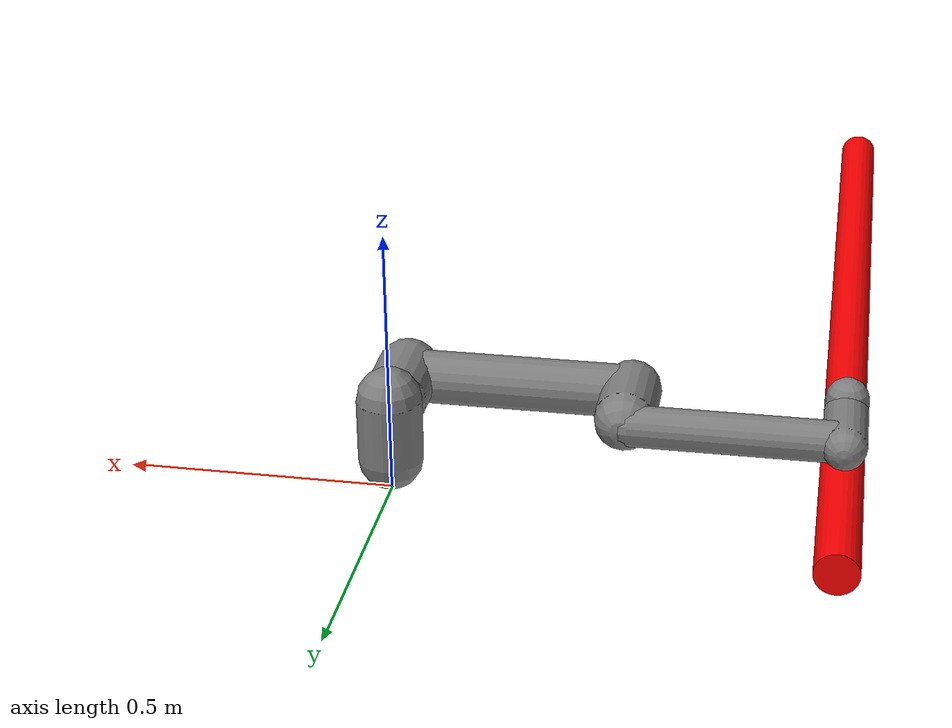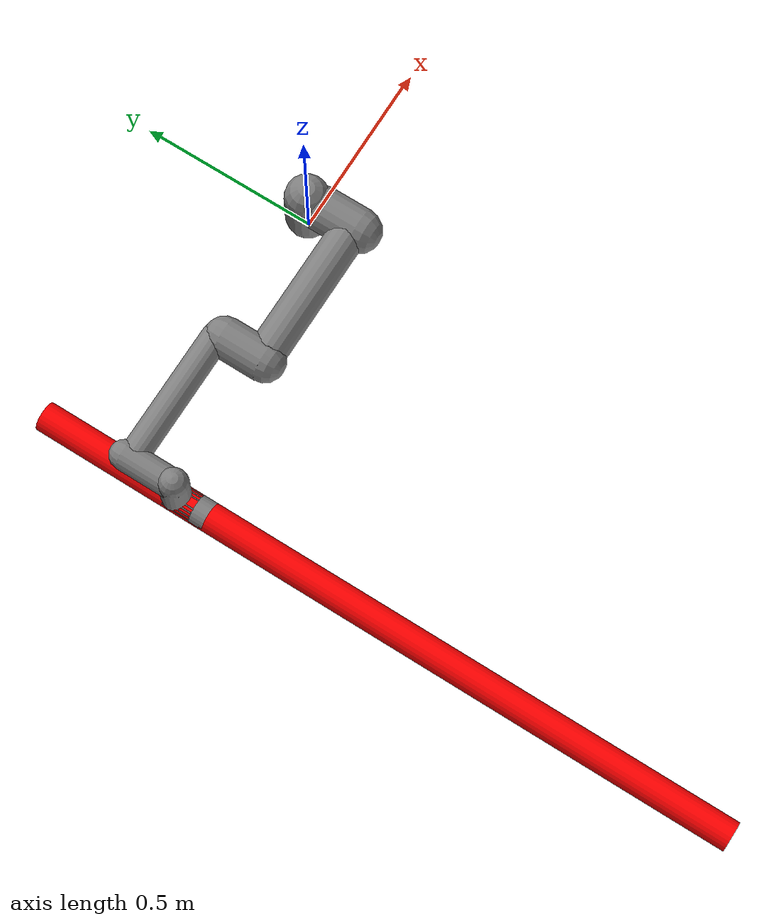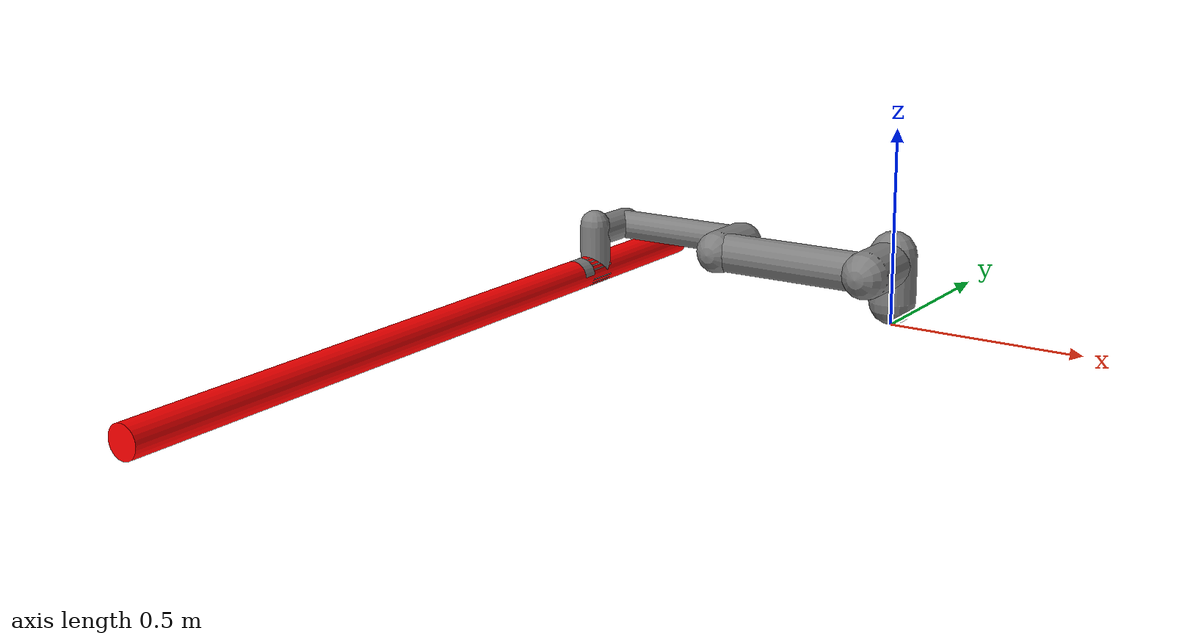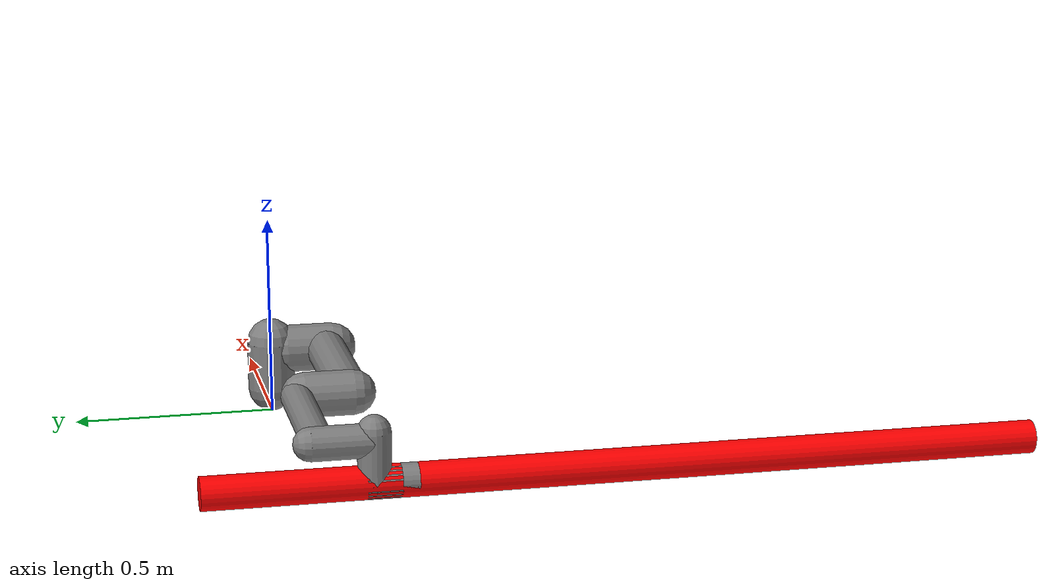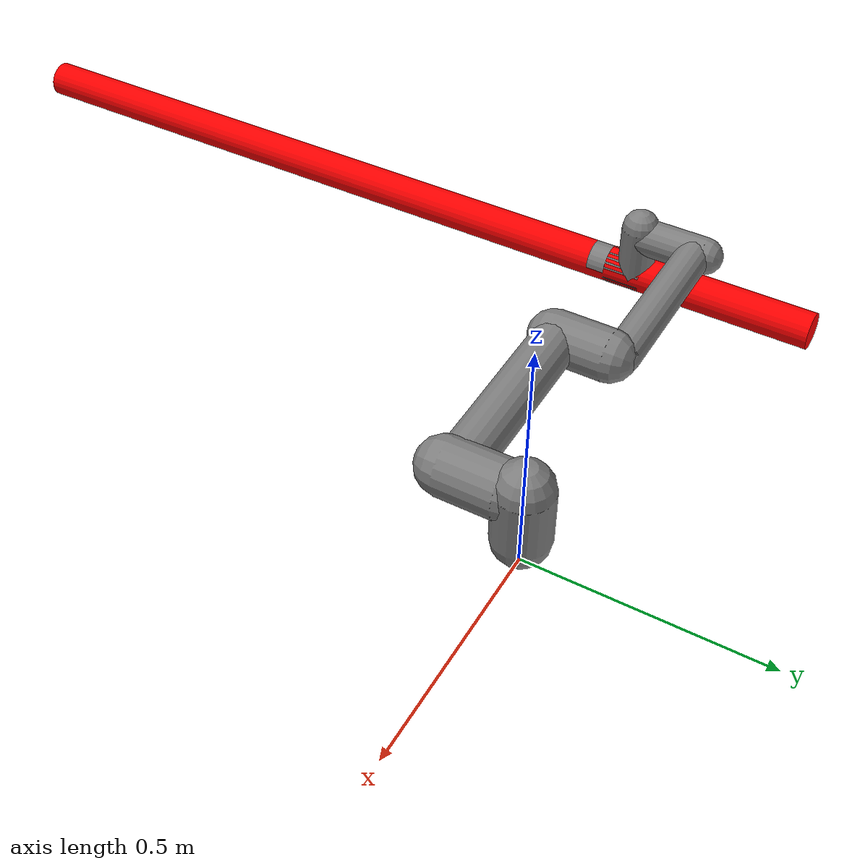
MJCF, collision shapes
<mujoco model="ur5e">
  <compiler angle="radian" autolimits="true" meshdir=".."/>

  <option integrator="implicitfast"/>

  <default>
    <default class="ur5e">
      <material specular="0.5" shininess="0.25"/>
      <joint axis="0 1 0" range="-6.28319 6.28319" armature="0.1"/>
      <general gaintype="fixed" biastype="affine" ctrlrange="-6.2831 6.2831" gainprm="2000" biasprm="0 -2000 -400"
        forcerange="-150 150"/>
      <default class="size3">
        <default class="size3_limited">
          <joint range="-3.1415 3.1415"/>
          <general ctrlrange="-3.1415 3.1415"/>
        </default>
      </default>
      <default class="size1">
        <general gainprm="500" biasprm="0 -500 -100" forcerange="-28 28"/>
      </default>
      <default class="visual">
        <geom type="mesh" contype="0" conaffinity="0" group="2"/>
      </default>
      <default class="collision">
        <geom type="capsule" group="3"/>
        <default class="eef_collision">
          <geom type="cylinder"/>
        </default>
      </default>
      <site size="0.001" rgba="0.5 0.5 0.5 0.3" group="4"/>
    </default>
  </default>

  <asset>
    <mesh name="base_0" file="ur5_assets/base_0.obj"/>
    <mesh name="base_1" file="ur5_assets/base_1.obj"/>
    <mesh name="shoulder_0" file="ur5_assets/shoulder_0.obj"/>
    <mesh name="shoulder_1" file="ur5_assets/shoulder_1.obj"/>
    <mesh name="shoulder_2" file="ur5_assets/shoulder_2.obj"/>
    <mesh name="upperarm_0" file="ur5_assets/upperarm_0.obj"/>
    <mesh name="upperarm_1" file="ur5_assets/upperarm_1.obj"/>
    <mesh name="upperarm_2" file="ur5_assets/upperarm_2.obj"/>
    <mesh name="upperarm_3" file="ur5_assets/upperarm_3.obj"/>
    <mesh name="forearm_0" file="ur5_assets/forearm_0.obj"/>
    <mesh name="forearm_1" file="ur5_assets/forearm_1.obj"/>
    <mesh name="forearm_2" file="ur5_assets/forearm_2.obj"/>
    <mesh name="forearm_3" file="ur5_assets/forearm_3.obj"/>
    <mesh name="wrist1_0" file="ur5_assets/wrist1_0.obj"/>
    <mesh name="wrist1_1" file="ur5_assets/wrist1_1.obj"/>
    <mesh name="wrist1_2" file="ur5_assets/wrist1_2.obj"/>
    <mesh name="wrist2_0" file="ur5_assets/wrist2_0.obj"/>
    <mesh name="wrist2_1" file="ur5_assets/wrist2_1.obj"/>
    <mesh name="wrist2_2" file="ur5_assets/wrist2_2.obj"/>
    <mesh name="wrist3" file="ur5_assets/wrist3.obj"/>
  </asset>

  <worldbody>
    <light name="spotlight" mode="targetbodycom" target="wrist_2_link" pos="0 -1 2"/>
    <body name="base" quat="0 0 0 -1" childclass="ur5e">
      <inertial mass="4.0" pos="0 0 0" diaginertia="0.00443333156 0.00443333156 0.0072"/>
      <geom mesh="base_0"   class="visual"/>
      <geom mesh="base_1"   class="visual"/>
      <body name="shoulder_link" pos="0 0 0.163">
        <inertial mass="3.7" pos="0 0 0" diaginertia="0.0102675 0.0102675 0.00666"/>
        <joint name="shoulder_pan_joint" class="size3" axis="0 0 1"/>
        <geom mesh="shoulder_0"   class="visual"/>
        <geom mesh="shoulder_1"   class="visual"/>
        <geom mesh="shoulder_2"   class="visual"/>
        <geom class="collision" size="0.06 0.06" pos="0 0 -0.04"/>
        <body name="upper_arm_link" pos="0 0.138 0" quat="1 0 1 0">
          <inertial mass="8.393" pos="0 0 0.2125" diaginertia="0.133886 0.133886 0.0151074"/>
          <joint name="shoulder_lift_joint" class="size3"/>
          <geom mesh="upperarm_0"  class="visual"/>
          <geom mesh="upperarm_1"   class="visual"/>
          <geom mesh="upperarm_2"   class="visual"/>
          <geom mesh="upperarm_3"   class="visual"/>
          <geom class="collision" pos="0 -0.04 0" quat="1 1 0 0" size="0.06 0.06"/>
          <geom class="collision" size="0.05 0.2" pos="0 0 0.2"/>
          <body name="forearm_link" pos="0 -0.131 0.425">
            <inertial mass="2.275" pos="0 0 0.196" diaginertia="0.0311796 0.0311796 0.004095"/>
            <joint name="elbow_joint" class="size3_limited"/>
            <geom mesh="forearm_0"   class="visual"/>
            <geom mesh="forearm_1"  class="visual"/>
            <geom mesh="forearm_2"   class="visual"/>
            <geom mesh="forearm_3"   class="visual"/>
            <geom class="collision" pos="0 0.08 0" quat="1 1 0 0" size="0.055 0.06"/>
            <geom class="collision" size="0.038 0.19" pos="0 0 0.2"/>
            <body name="wrist_1_link" pos="0 0 0.392" quat="1 0 1 0">
              <inertial mass="1.219" pos="0 0.127 0" diaginertia="0.0025599 0.0025599 0.0021942"/>
              <joint name="wrist_1_joint" class="size1"/>
              <geom mesh="wrist1_0"   class="visual"/>
              <geom mesh="wrist1_1"   class="visual"/>
              <geom mesh="wrist1_2"   class="visual"/>
              <geom class="collision" pos="0 0.05 0" quat="1 1 0 0" size="0.04 0.07"/>
              <body name="wrist_2_link" pos="0 0.127 0">
                <inertial mass="1.219" pos="0 0 0.1" diaginertia="0.0025599 0.0025599 0.0021942"/>
                <joint name="wrist_2_joint" axis="0 0 1" class="size1"/>
                <geom mesh="wrist2_0"   class="visual"/>
                <geom mesh="wrist2_1"   class="visual"/>
                <geom mesh="wrist2_2"   class="visual"/>
                <geom class="collision" size="0.04 0.06" pos="0 0 0.04"/>
                <geom class="collision" pos="0 0.02 0.1" quat="1 1 0 0" size="0.04 0.04"/>
                <body name="wrist_3_link" pos="0 0 0.1">
                  <inertial mass="0.1889" pos="0 0.0771683 0" quat="1 0 0 1"
                    diaginertia="0.000132134 9.90863e-05 9.90863e-05"/>
                  <joint name="wrist_3_joint" class="size1"/>
                  <geom  mesh="wrist3" class="visual"/>
                  <geom class="eef_collision" pos="0 0.08 0" quat="1 1 0 0" size="0.04 0.02"/>
                  <site name="attachment_site" type="sphere" size="0.01" pos="0 0.1 0" quat="-1 1 0 0" rgba="0.5 0.5 0.5 1"/>
                  <body name="grasped_body" pos="0 0.1 0" quat="-1 1 0 0">
                    <site name="peg_tip" size="0.01" pos="0 0 0.05" euler="3.14159 0 0" rgba="1 0.0 0.0 1" />
                    <geom type="cylinder" pos="0 0 0.5" euler="3.14159 0 0" size="0.04 1.0" group="3" rgba="1 0.0 0.0 1"/>
                    <!-- x= towards the base y = up from groundplane z = out of ee-->
                  </body>
                </body>
              </body>
            </body>
          </body>
        </body>
      </body>
    </body>
  </worldbody>

  <actuator>
    <motor name="shoulder_pan" joint="shoulder_pan_joint"/>
    <motor name="shoulder_lift" joint="shoulder_lift_joint"/>
    <motor name="elbow" joint="elbow_joint"/>
    <motor name="wrist_1" joint="wrist_1_joint"/>
    <motor name="wrist_2" joint="wrist_2_joint"/>
    <motor name="wrist_3" joint="wrist_3_joint"/>
  </actuator>

  <keyframe>
    <key name="home"
    qpos="-1.5708 -1.5708 1.5708 -1.5708 -1.5708 0"
    qvel="0 0 0 0 0 0"
    ctrl="-1.5708 -1.5708 1.5708 -1.5708 -1.5708 0"/>
  </keyframe>
</mujoco>
